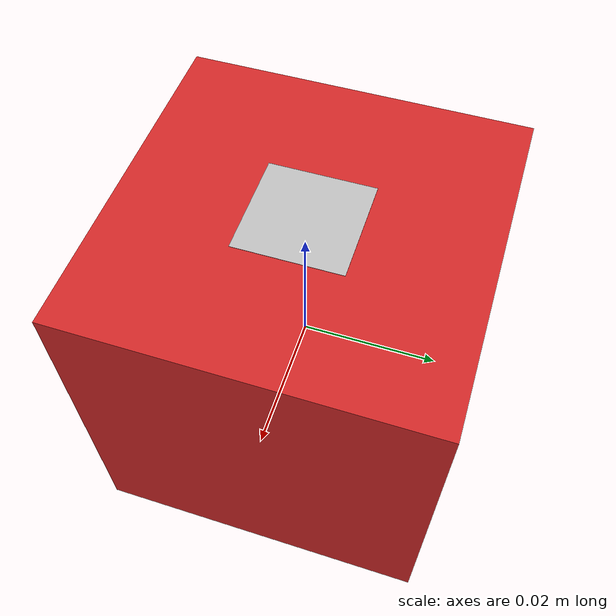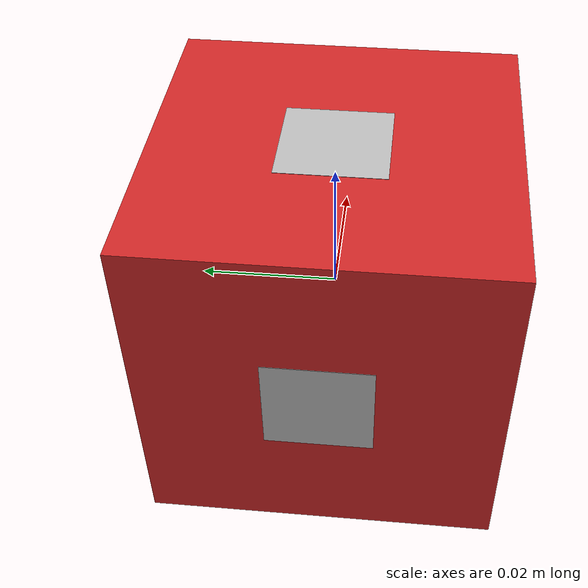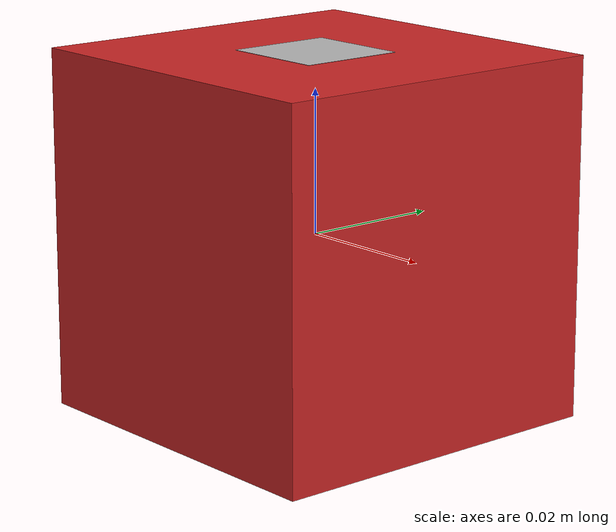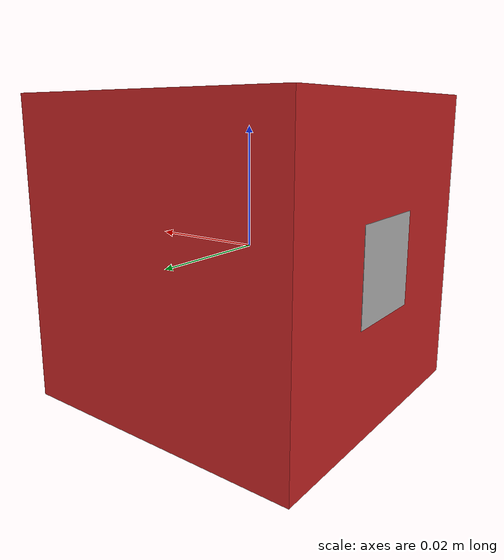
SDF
<?xml version="1.0"?>
<sdf version='1.7'>
  <model name='box_with_aruco'>

    <link name='box_link'>
      <inertial>
        <pose>0 0 0 0 -0 0</pose>
        <mass>1</mass>
        <inertia>
          <ixx>0.01</ixx>
          <ixy>0</ixy>
          <ixz>0</ixz>
          <iyy>0.01</iyy>
          <iyz>0</iyz>
          <izz>0.01</izz>
        </inertia>
      </inertial>
      <collision name='box_link_collision'>
        <pose>0 0 0 0 -0 0</pose>
        <geometry>
          <box>
            <size>0.05 0.05 0.05</size>
          </box>
        </geometry>
      </collision>
      <visual name='box_link_visual'>
        <pose>0 0 0 0 -0 0</pose>
        <geometry>
          <box>
            <size>0.05 0.05 0.05</size>
          </box>
        </geometry>
        <material>
          <script>
            <name>Gazebo/Red</name>
            <uri>file://media/materials/scripts/gazebo.material</uri>
          </script>
        </material>
      </visual>

      <!-- ArUco Marker 1 -->
      <visual name='aruco_marker_1_visual'>
        <pose>-0.025 0 0 -1.57079 0 -1.5708</pose>
        <geometry>
          <box>
            <size>0.015 0.015 0.0001</size>
          </box>
        </geometry>
        <material>
          <script>
            <uri>model://box_with_aruco/materials/scripts</uri>
            <uri>model://box_with_aruco/materials/textures</uri>
            <name>Marker1</name>
          </script>
        </material>
      </visual>

      <!-- ArUco Marker 2 -->
      <visual name='aruco_marker_2_visual'>
        <pose>0 0 0.025 0 -0 1.57079</pose>
        <geometry>
          <box>
            <size>0.015 0.015 0.0001</size>
          </box>
        </geometry>
        <material>
          <script>
            <uri>model://box_with_aruco/materials/scripts</uri>
            <uri>model://box_with_aruco/materials/textures</uri>
            <name>Marker2</name>
          </script>
        </material>
      </visual>

    </link>

  </model>
</sdf>
